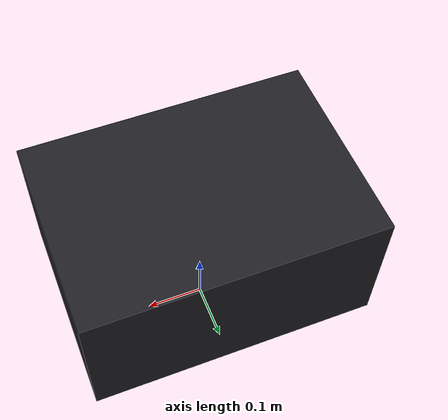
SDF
<?xml version="1.0" ?>
<sdf version="1.9">
  <world name="dant3_social_demo">
    <physics name="default_physics" type="ignored">
      <max_step_size>0.001</max_step_size>
      <real_time_factor>1.0</real_time_factor>
    </physics>

    <plugin filename="gz-sim-physics-system" name="gz::sim::systems::Physics"/>
    <plugin filename="gz-sim-user-commands-system" name="gz::sim::systems::UserCommands"/>
    <plugin filename="gz-sim-scene-broadcaster-system" name="gz::sim::systems::SceneBroadcaster"/>

    <light type="directional" name="sun">
      <cast_shadows>true</cast_shadows>
      <pose>0 0 10 0 0 0</pose>
      <diffuse>0.8 0.8 0.8 1</diffuse>
      <specular>0.2 0.2 0.2 1</specular>
      <direction>-0.5 0.1 -0.9</direction>
    </light>

    <model name="dant3_social_robot">
      <static>true</static>
      <pose>0 0 0.2 0 0 0</pose>
      <link name="body">
        <visual name="body_visual">
          <geometry>
            <box><size>0.5 0.35 0.25</size></box>
          </geometry>
          <material>
            <ambient>0.12 0.12 0.14 1</ambient>
            <diffuse>0.12 0.12 0.14 1</diffuse>
          </material>
        </visual>
      </link>
    </model>
  </world>
</sdf>
